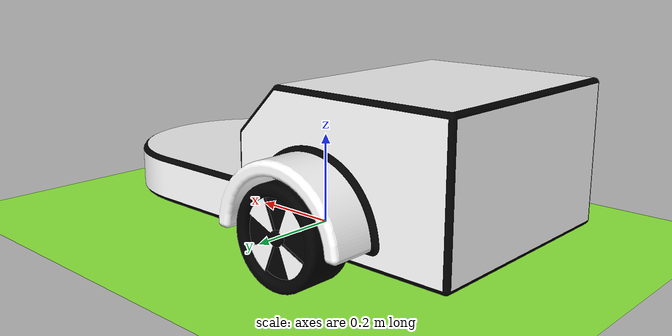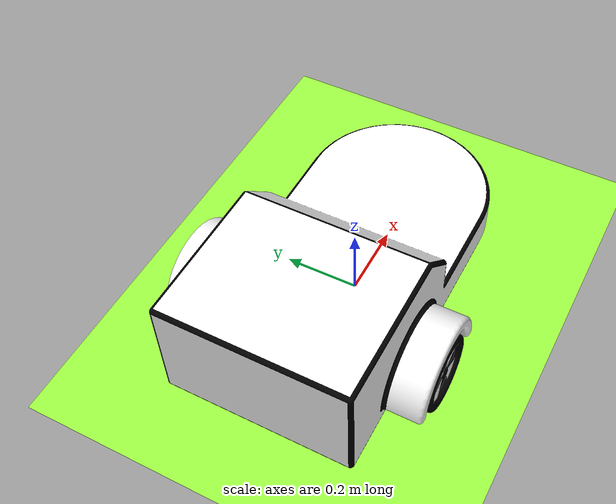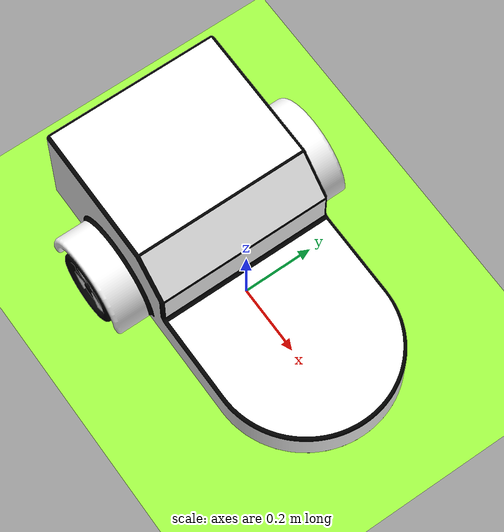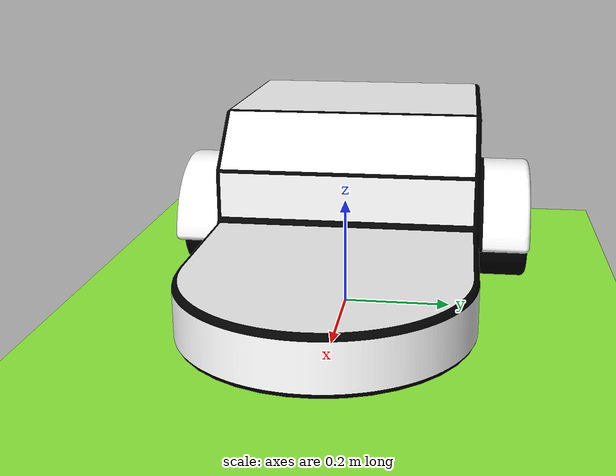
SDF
<?xml version='1.0' encoding='utf-8'?>
<sdf version="1.9">
  <world name="px4_rover_differential">
    <physics type="ode">
      <max_step_size>0.002</max_step_size>
      <real_time_factor>1.0</real_time_factor>
      <real_time_update_rate>500</real_time_update_rate>
    </physics>
    <gravity>0 0 -9.8</gravity>
    <magnetic_field>6e-06 2.3e-05 -4.2e-05</magnetic_field>
    <atmosphere type="adiabatic" />
    <scene>
      <grid>true</grid>
      <ambient>0.4 0.4 0.4 1</ambient>
      <background>0.7 0.7 0.7 1</background>
      <shadows>true</shadows>
    </scene>
    <model name="ground_plane">
      <static>true</static>
      <link name="link">
        <collision name="collision">
          <geometry>
            <plane>
              <normal>0 0 1</normal>
              <size>1 1</size>
            </plane>
          </geometry>
          <surface>
            <friction>
              <ode>
                <mu>2</mu>
                <mu2>2</mu2>
              </ode>
            </friction>
            <bounce />
            <contact>
              <collide_bitmask>65535</collide_bitmask>
              <ode>
                <min_depth>0.005</min_depth>
                <kp>1e8</kp>
              </ode>
            </contact>
          </surface>
        </collision>
        <visual name="visual">
          <cast_shadows>false</cast_shadows>
          <geometry>
            <plane>
              <normal>0 0 1</normal>
              <size>400 400</size>
            </plane>
          </geometry>
          <material>
            <diffuse>0.6 1.0 0.25 0.5</diffuse>
            <specular>0 0 0 0</specular>
            <emissive>0 0 0 0</emissive>
          </material>
        </visual>
        <pose>0 0 0 0 -0 0</pose>
        <inertial>
          <pose>0 0 0 0 -0 0</pose>
          <mass>1</mass>
          <inertia>
            <ixx>1</ixx>
            <ixy>0</ixy>
            <ixz>0</ixz>
            <iyy>1</iyy>
            <iyz>0</iyz>
            <izz>1</izz>
          </inertia>
        </inertial>
        <enable_wind>false</enable_wind>
      </link>
      <pose>0 0 0 0 -0 0</pose>
      <self_collide>false</self_collide>
    </model>
    <light name="sunUTC" type="directional">
      <pose>0 0 500 0 -0 0</pose>
      <cast_shadows>true</cast_shadows>
      <intensity>1</intensity>
      <direction>0.001 0.625 -0.78</direction>
      <diffuse>0.904 0.904 0.904 1</diffuse>
      <specular>0.271 0.271 0.271 1</specular>
      <attenuation>
        <range>2000</range>
        <linear>0</linear>
        <constant>1</constant>
        <quadratic>0</quadratic>
      </attenuation>
      <spot>
        <inner_angle>0</inner_angle>
        <outer_angle>0</outer_angle>
        <falloff>0</falloff>
      </spot>
    </light>
    <spherical_coordinates>
      <surface_model>EARTH_WGS84</surface_model>
      <world_frame_orientation>ENU</world_frame_orientation>
      <latitude_deg>47.397971057728974</latitude_deg>
      <longitude_deg> 8.546163739800146</longitude_deg>
      <elevation>0</elevation>
    </spherical_coordinates>
    <plugin filename="gz-sim-physics-system" name="gz::sim::systems::Physics" />
    <plugin filename="gz-sim-user-commands-system" name="gz::sim::systems::UserCommands" />
    <plugin filename="gz-sim-scene-broadcaster-system" name="gz::sim::systems::SceneBroadcaster" />
    <plugin filename="gz-sim-contact-system" name="gz::sim::systems::Contact" />
    <plugin filename="gz-sim-imu-system" name="gz::sim::systems::Imu" />
    <plugin filename="gz-sim-air-pressure-system" name="gz::sim::systems::AirPressure" />
    <plugin filename="gz-sim-air-speed-system" name="gz::sim::systems::AirSpeed" />
    <plugin filename="gz-sim-apply-link-wrench-system" name="gz::sim::systems::ApplyLinkWrench" />
    <plugin filename="gz-sim-navsat-system" name="gz::sim::systems::NavSat" />
    <plugin filename="gz-sim-magnetometer-system" name="gz::sim::systems::Magnetometer" />
    <plugin filename="gz-sim-sensors-system" name="gz::sim::systems::Sensors">
      <render_engine>ogre2</render_engine>
    </plugin>
    <include>
      <uri>model://rover_differential</uri>
      <name>rover_differential_0</name>
    </include>
  </world>
</sdf>

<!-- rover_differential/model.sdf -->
<sdf version="1.6">
  <model name='rover_differential'>
    <!--Links-->
    <link name='base_link'>
      <pose relative_to='__model__'>0 0 0.1 0 0 0</pose>
      <inertial>
        <mass>5.0</mass>
        <pose>-0.2 0 0 0 0 0</pose> <!-- Center of mass offset to wheel axis-->
        <inertia>
          <ixx>0.030208333</ixx>
          <ixy>0.0</ixy>
          <ixz>0.0</ixz>
          <iyy>0.108333333</iyy>
          <iyz>0.0</iyz>
          <izz>0.130208333</izz>
        </inertia>
      </inertial>
      <visual name='visual'>
        <pose>0 0 -0.05 0 0 0</pose>
        <geometry>
          <mesh>
            <uri>model://rover_differential/meshes/rover_differential_base.dae</uri>
          </mesh>
        </geometry>
      </visual>
      <collision name='collision'>
        <geometry>
          <box>
            <size>1 0.5 0.1</size>
          </box>
        </geometry>
      </collision>

      <!--Sensors-->
      <sensor name="air_pressure_sensor" type="air_pressure">
        <gz_frame_id>base_link</gz_frame_id>
        <always_on>1</always_on>
        <update_rate>50</update_rate>
        <air_pressure>
          <!-- Noise modeled after BMP390 -->
          <pressure>
            <noise type="gaussian">
              <mean>0</mean>
              <stddev>3</stddev>
            </noise>
          </pressure>
        </air_pressure>
      </sensor>
      <sensor name="magnetometer_sensor" type="magnetometer">
        <gz_frame_id>base_link</gz_frame_id>
        <always_on>1</always_on>
        <update_rate>100</update_rate>
        <magnetometer>
          <!-- TODO: update to fix units and coordinate system when we move past Harmonic -->
          <!-- See https://github.com/gazebosim/gz-sim/pull/2460 -->
          <!-- 3mgauss RMS: NOTE: noise is in tesla but sensor reports data in gauss -->
          <!-- Noise modeled after IIS2MDC -->
          <x>
            <noise type="gaussian">
              <stddev>0.0001</stddev>
            </noise>
          </x>
          <y>
            <noise type="gaussian">
              <stddev>0.0001</stddev>
            </noise>
          </y>
          <z>
            <noise type="gaussian">
              <stddev>0.0001</stddev>
            </noise>
          </z>
        </magnetometer>
      </sensor>
      <sensor name="imu_sensor" type="imu">
        <gz_frame_id>base_link</gz_frame_id>
        <always_on>1</always_on>
        <update_rate>250</update_rate>
        <imu>
          <angular_velocity>
            <!-- Noise modeled after IIM42653 -->
            <!-- 0.05 deg/s converted to rad/s -->
            <x>
              <noise type="gaussian">
                <mean>0.0</mean>
                <stddev>0.0008726646</stddev>
              </noise>
            </x>
            <y>
              <noise type="gaussian">
                <mean>0.0</mean>
                <stddev>0.0008726646</stddev>
              </noise>
            </y>
            <z>
              <noise type="gaussian">
                <mean>0.0</mean>
                <stddev>0.0008726646</stddev>
              </noise>
            </z>
          </angular_velocity>
          <linear_acceleration>
            <!-- Noise modeled after IIM42653 -->
            <!-- X & Y axis: 0.65 mg-rms converted to m/ss -->
            <x>
              <noise type="gaussian">
                <mean>0.0</mean>
                <stddev>0.00637</stddev>
              </noise>
            </x>
            <y>
              <noise type="gaussian">
                <mean>0.0</mean>
                <stddev>0.00637</stddev>
              </noise>
            </y>
            <!-- Z axis: 0.70 mg-rms converted to m/ss-->
            <z>
              <noise type="gaussian">
                <mean>0.0</mean>
                <stddev>0.00686</stddev>
              </noise>
            </z>
          </linear_acceleration>
        </imu>
      </sensor>
      <sensor name="navsat_sensor" type="navsat">
        <gz_frame_id>base_link</gz_frame_id>
        <always_on>1</always_on>
        <update_rate>30</update_rate>
      </sensor>
    </link>

    <link name='wheel_rear_left_link'>
      <pose relative_to="base_link">-0.2 0.3 0 -1.5707 0 0</pose>
      <inertial>
        <mass>0.5</mass>
        <inertia>
          <ixx>0.000807292</ixx>
          <ixy>0</ixy>
          <ixz>0</ixz>
          <iyy>0.000807292</iyy>
          <iyz>0</iyz>
          <izz>0.00140625</izz>
        </inertia>
      </inertial>
      <visual name='visual'>
        <pose>0 0 0 0 0 0</pose>
        <geometry>
          <mesh>
            <uri>model://rover_differential/meshes/rover_differential_wheel.dae</uri>
          </mesh>
        </geometry>
      </visual>
      <collision name='collision'>
        <geometry>
          <cylinder>
            <radius>0.1</radius>
            <length>0.1</length>
          </cylinder>
        </geometry>
        <surface>
          <friction>
            <ode>
              <mu>1.0</mu>
              <mu2>1.0</mu2>
              <fdir1>1 0 0</fdir1>
              <slip1>0.0</slip1>
              <slip2>0.0</slip2>
            </ode>
          </friction>
        </surface>
      </collision>
    </link>

    <link name='wheel_rear_right_link'>
      <pose relative_to="base_link">-0.2 -0.3 0 -1.5707 0 0</pose>
      <inertial>
        <mass>0.5</mass>
        <inertia>
          <ixx>0.000807292</ixx>
          <ixy>0</ixy>
          <ixz>0</ixz>
          <iyy>0.000807292</iyy>
          <iyz>0</iyz>
          <izz>0.00140625</izz>
        </inertia>
      </inertial>
      <visual name='visual'>
        <pose>0 0 0 0 0 0</pose>
        <geometry>
          <mesh>
            <uri>model://rover_differential/meshes/rover_differential_wheel.dae</uri>
          </mesh>
        </geometry>
      </visual>
      <collision name='collision'>
        <geometry>
          <cylinder>
            <radius>0.1</radius>
            <length>0.1</length>
          </cylinder>
        </geometry>
        <surface>
          <friction>
            <ode>
              <mu>1.0</mu>
              <mu2>1.0</mu2>
              <fdir1>1 0 0</fdir1>
              <slip1>0.0</slip1>
              <slip2>0.0</slip2>
            </ode>
          </friction>
        </surface>
      </collision>
    </link>

    <link name='cast_wheel_front_link'>
      <pose relative_to="base_link">0.25 0 -0.025 -1.5707 0 0</pose>
      <inertial>
        <mass>1</mass>
        <inertia>
          <ixx>0.016</ixx>
          <ixy>0</ixy>
          <ixz>0</ixz>
          <iyy>0.016</iyy>
          <iyz>0</iyz>
          <izz>0.016</izz>
        </inertia>
      </inertial>
      <visual name='visual'>
        <geometry>
          <sphere>
            <radius>0.075</radius>
          </sphere>
        </geometry>
        <material>
          <ambient>0 0 0 1</ambient>
          <diffuse>0 0 0 1</diffuse>
          <specular>0 0 0 0</specular>
          <emissive>0 0 0 1</emissive>
        </material>
      </visual>
      <collision name='collision'>
        <geometry>
          <sphere>
            <radius>0.075</radius>
          </sphere>
        </geometry>
        <surface>
          <friction>
            <ode>
              <mu>0</mu>
              <mu2>0</mu2>
              <fdir1>1 0 0</fdir1>
            </ode>
          </friction>
        </surface>
      </collision>
    </link>

    <link name='cast_wheel_rear_link'>
      <pose relative_to="base_link">-0.3 0 -0.025 -1.5707 0 0</pose>
      <inertial>
        <mass>1</mass>
        <inertia>
          <ixx>0.016</ixx>
          <ixy>0</ixy>
          <ixz>0</ixz>
          <iyy>0.016</iyy>
          <iyz>0</iyz>
          <izz>0.016</izz>
        </inertia>
      </inertial>
      <visual name='visual'>
        <geometry>
          <sphere>
            <radius>0.075</radius>
          </sphere>
        </geometry>
        <material>
          <ambient>0 0 0 1</ambient>
          <diffuse>0 0 0 1</diffuse>
          <specular>0 0 0 0</specular>
          <emissive>0 0 0 1</emissive>
        </material>
      </visual>
      <collision name='collision'>
        <geometry>
          <sphere>
            <radius>0.075</radius>
          </sphere>
        </geometry>
        <surface>
          <friction>
            <ode>
              <mu>0</mu>
              <mu2>0</mu2>
              <fdir1>1 0 0</fdir1>
            </ode>
          </friction>
        </surface>
      </collision>
    </link>

    <!-- Joints -->
    <joint name='wheel_rear_left_joint' type='revolute'>
      <pose relative_to='wheel_rear_left_link' />
      <parent>base_link</parent>
      <child>wheel_rear_left_link</child>
      <axis>
        <xyz expressed_in='__model__'>0 1 0</xyz>
      </axis>
    </joint>

    <joint name='wheel_rear_right_joint' type='revolute'>
      <pose relative_to='wheel_rear_right_link' />
      <parent>base_link</parent>
      <child>wheel_rear_right_link</child>
      <axis>
        <xyz expressed_in='__model__'>0 1 0</xyz>
      </axis>
    </joint>

    <joint name='cast_wheel_front_joint' type='ball'>
      <pose relative_to='cast_wheel_front_link' />
      <parent>base_link</parent>
      <child>cast_wheel_front_link</child>
    </joint>

    <joint name='cast_wheel_rear_joint' type='ball'>
      <pose relative_to='cast_wheel_rear_link' />
      <parent>base_link</parent>
      <child>cast_wheel_rear_link</child>
    </joint>

    <!--Plugins-->
    <plugin filename="gz-sim-joint-controller-system" name="gz::sim::systems::JointController">
      <joint_name>wheel_rear_left_joint</joint_name>
      <sub_topic>command/motor_speed</sub_topic>
      <control_type>velocity</control_type>
      <use_actuator_msg>true</use_actuator_msg>
      <actuator_number>1</actuator_number>
    </plugin>

    <plugin filename="gz-sim-joint-controller-system" name="gz::sim::systems::JointController">
      <joint_name>wheel_rear_right_joint</joint_name>
      <sub_topic>command/motor_speed</sub_topic>
      <control_type>velocity</control_type>
      <use_actuator_msg>true</use_actuator_msg>
      <actuator_number>0</actuator_number>
    </plugin>

    <plugin filename="gz-sim-joint-state-publisher-system"
      name="gz::sim::systems::JointStatePublisher">
      <joint_name>wheel_rear_left_joint</joint_name>
      <joint_name>wheel_rear_right_joint</joint_name>
    </plugin>
  </model>
</sdf>
